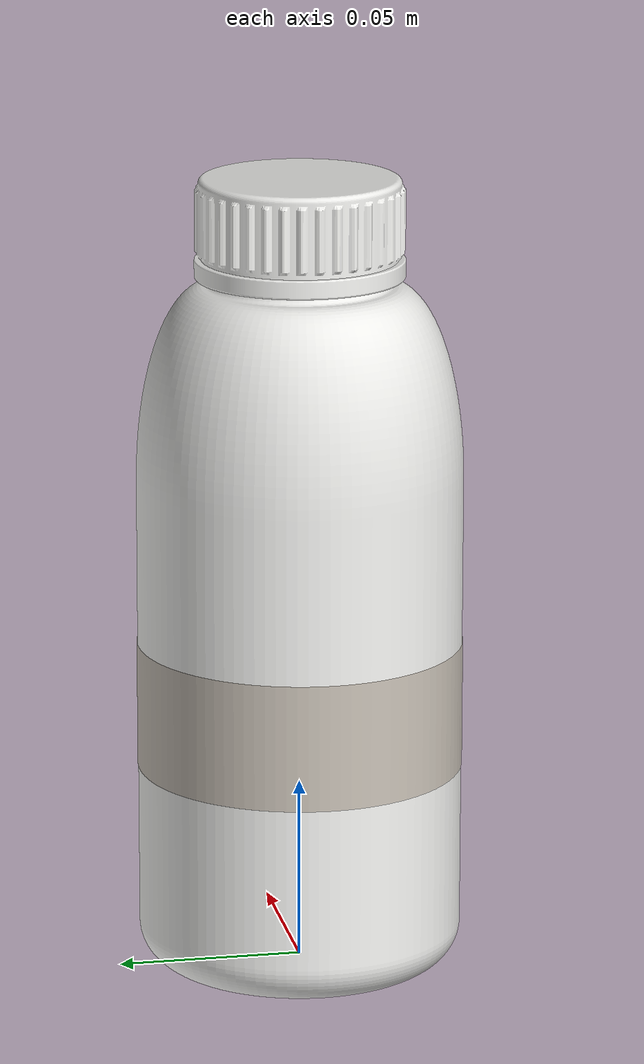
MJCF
<!-- Generated by tools/build_labelled_bottles.py. Phenylacetic acid (powder),
     1000 ml, marker 198, barcode 2004713561962.
     Origin bottom-centre, +Z up, the label's front facing -Y. -->
<mujoco model="PWD-0099">
  <asset>
    <mesh name="bottle_1000ml_body" file="meshes/bottle_1000ml_body.obj" inertia="exact"/>
    <mesh name="bottle_1000ml_cap" file="meshes/bottle_1000ml_cap.obj" inertia="exact"/>
    <mesh name="bottle_1000ml_label" file="meshes/bottle_1000ml_label.obj" inertia="shell"/>
    <texture name="label" type="2d" file="textures/PWD-0099.png"/>
    <material name="label" texture="label" specular="0.05" shininess="0.1"/>
  </asset>
  <worldbody>
    <body name="PWD-0099">
      <geom name="body" type="mesh" mesh="bottle_1000ml_body" rgba="0.920 0.920 0.910 1.000" density="950"/>
      <geom name="cap" type="mesh" mesh="bottle_1000ml_cap" rgba="0.920 0.920 0.910 1.000" density="900"/>
      <geom name="label" type="mesh" mesh="bottle_1000ml_label" material="label" contype="0" conaffinity="0" mass="0"/>
    </body>
  </worldbody>
</mujoco>
